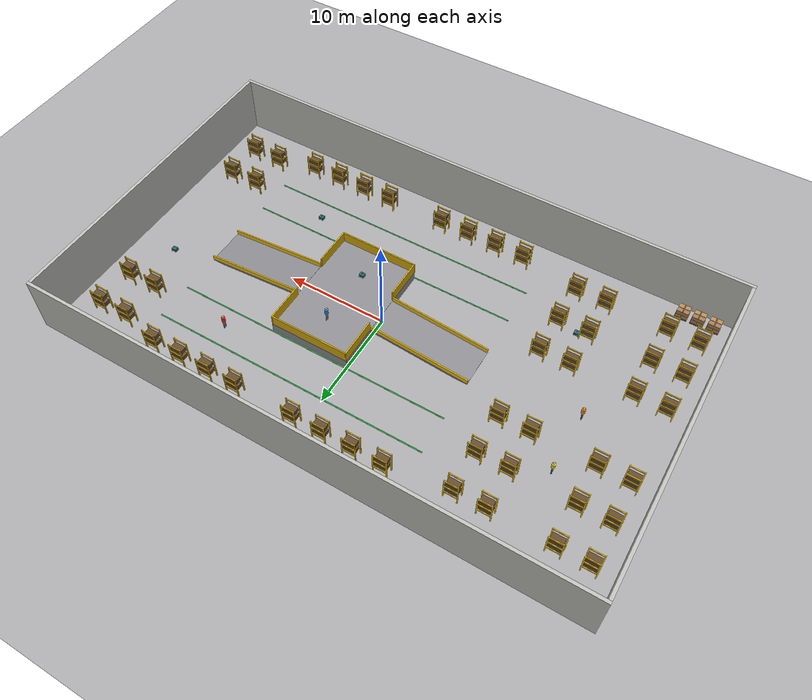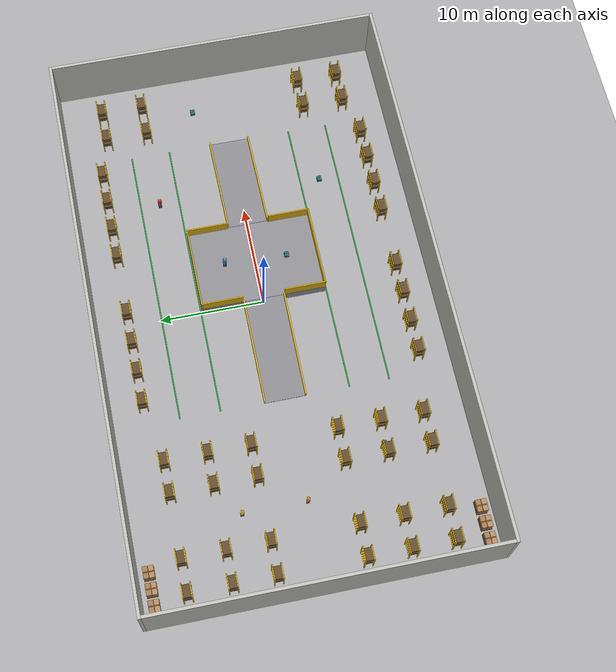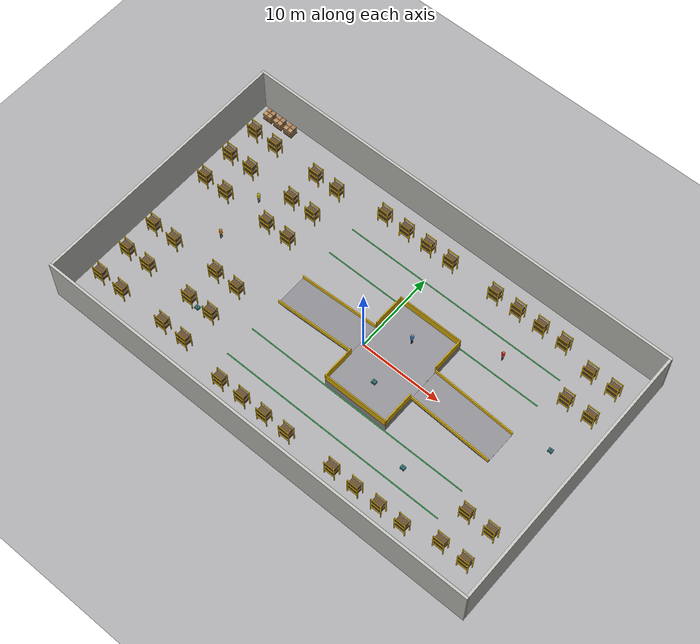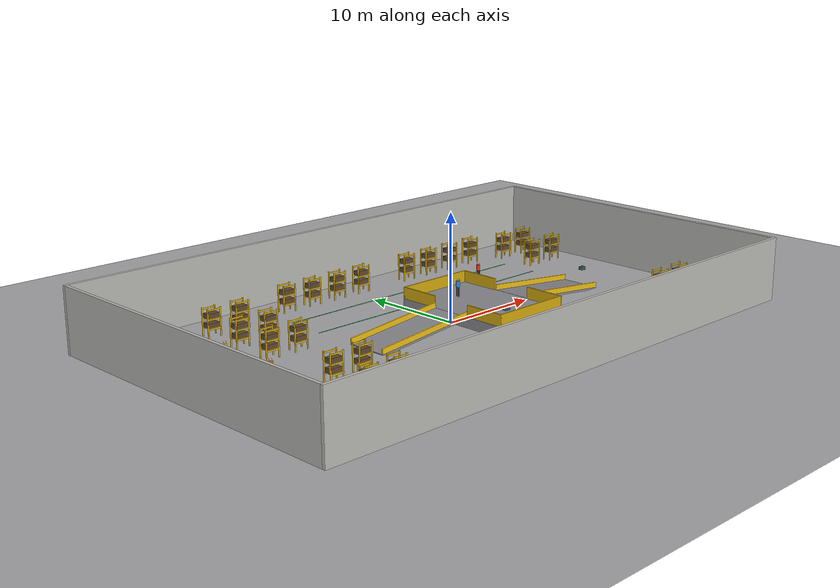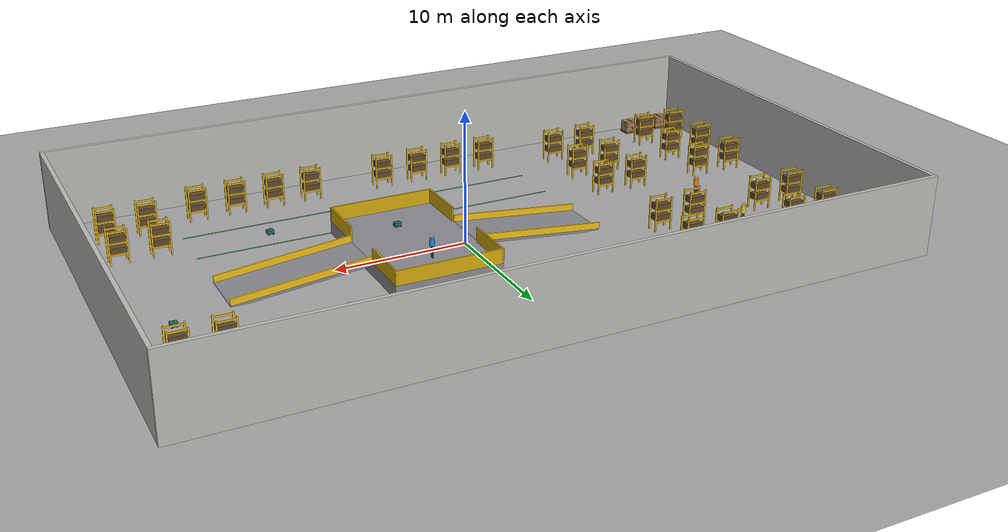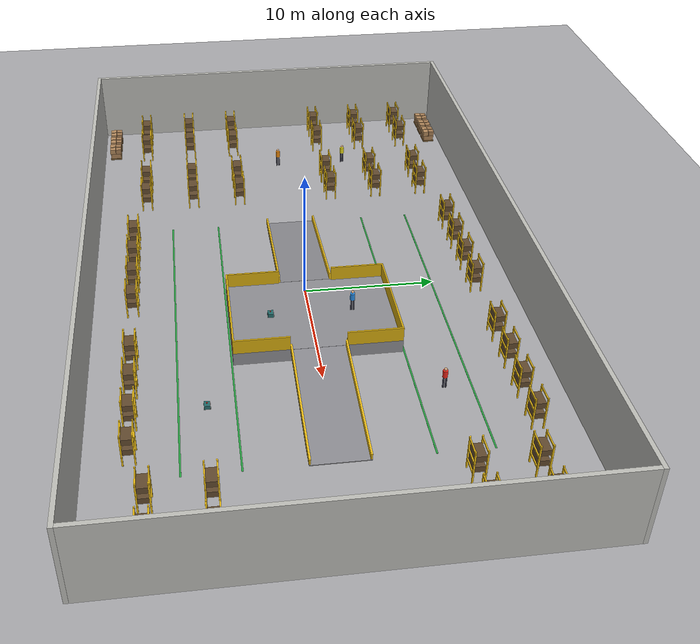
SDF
<?xml version="1.0" ?>
<sdf version="1.9">
  <world name="warehouse">

    <gui fullscreen="false">
      <camera name="user_camera">
        <camera_pose>-4 -26 14 0 0.5 1.5708</camera_pose>
      </camera>
    </gui>

    <physics name="1ms" type="ignored">
      <max_step_size>0.001</max_step_size>
      <real_time_factor>1.0</real_time_factor>
    </physics>

    <plugin filename="ignition-gazebo-physics-system" name="ignition::gazebo::systems::Physics"/>
    <plugin filename="ignition-gazebo-user-commands-system" name="ignition::gazebo::systems::UserCommands"/>
    <plugin filename="ignition-gazebo-scene-broadcaster-system" name="ignition::gazebo::systems::SceneBroadcaster"/>
    <plugin filename="ignition-gazebo-sensors-system" name="ignition::gazebo::systems::Sensors">
      <render_engine>ogre2</render_engine>
    </plugin>
    <plugin filename="ignition-gazebo-imu-system" name="ignition::gazebo::systems::Imu"/>
    <plugin filename="ignition-gazebo-contact-system" name="ignition::gazebo::systems::Contact"/>

    <scene>
      <ambient>0.6 0.6 0.6 1</ambient>
      <background>0.75 0.78 0.82 1</background>
      <shadows>true</shadows>
    </scene>

    <light type="directional" name="sun">
      <cast_shadows>true</cast_shadows>
      <pose>0 0 25 0 0 0</pose>
      <diffuse>0.9 0.9 0.9 1</diffuse>
      <specular>0.25 0.25 0.25 1</specular>
      <attenuation><range>900</range><constant>0.9</constant><linear>0.01</linear><quadratic>0.001</quadratic></attenuation>
      <direction>-0.3 0.35 -0.9</direction>
    </light>

    <model name="ground_plane">
      <static>true</static>
      <link name="link">
        <collision name="collision">
          <geometry><plane><normal>0 0 1</normal><size>54.0 32.0</size></plane></geometry>
          <surface><friction><ode><mu>0.9</mu><mu2>0.9</mu2></ode></friction></surface>
        </collision>
        <visual name="visual">
          <geometry><plane><normal>0 0 1</normal><size>54.0 32.0</size></plane></geometry>
          <material><ambient>0.62 0.62 0.63 1</ambient><diffuse>0.66 0.66 0.67 1</diffuse></material>
        </visual>
      </link>
    </model>
    <model name="wall_north">
      <static>true</static>
      <pose>-1.0 16.15 3.0 0 0 0.0</pose>
      <link name="link">
        <collision name="collision"><geometry><box><size>54.6 0.3 6.0</size></box></geometry>
          <surface><friction><ode><mu>1.0</mu><mu2>1.0</mu2></ode></friction></surface></collision>
        <visual name="visual"><geometry><box><size>54.6 0.3 6.0</size></box></geometry>
          <material><ambient>0.74 0.74 0.72 1</ambient><diffuse>0.74 0.74 0.72 1</diffuse></material>
        </visual>
      </link>
    </model>
    <model name="wall_south">
      <static>true</static>
      <pose>-1.0 -16.15 3.0 0 0 0.0</pose>
      <link name="link">
        <collision name="collision"><geometry><box><size>54.6 0.3 6.0</size></box></geometry>
          <surface><friction><ode><mu>1.0</mu><mu2>1.0</mu2></ode></friction></surface></collision>
        <visual name="visual"><geometry><box><size>54.6 0.3 6.0</size></box></geometry>
          <material><ambient>0.74 0.74 0.72 1</ambient><diffuse>0.74 0.74 0.72 1</diffuse></material>
        </visual>
      </link>
    </model>
    <model name="wall_east">
      <static>true</static>
      <pose>26.15 0 3.0 0 0 0.0</pose>
      <link name="link">
        <collision name="collision"><geometry><box><size>0.3 32.0 6.0</size></box></geometry>
          <surface><friction><ode><mu>1.0</mu><mu2>1.0</mu2></ode></friction></surface></collision>
        <visual name="visual"><geometry><box><size>0.3 32.0 6.0</size></box></geometry>
          <material><ambient>0.74 0.74 0.72 1</ambient><diffuse>0.74 0.74 0.72 1</diffuse></material>
        </visual>
      </link>
    </model>
    <model name="wall_west">
      <static>true</static>
      <pose>-28.15 0 3.0 0 0 0.0</pose>
      <link name="link">
        <collision name="collision"><geometry><box><size>0.3 32.0 6.0</size></box></geometry>
          <surface><friction><ode><mu>1.0</mu><mu2>1.0</mu2></ode></friction></surface></collision>
        <visual name="visual"><geometry><box><size>0.3 32.0 6.0</size></box></geometry>
          <material><ambient>0.74 0.74 0.72 1</ambient><diffuse>0.74 0.74 0.72 1</diffuse></material>
        </visual>
      </link>
    </model>
    <model name="mezzanine">
      <static>true</static>
      <pose>4.0 0.0 0.5 0 0 0.0</pose>
      <link name="link">
        <collision name="collision"><geometry><box><size>8.0 12.0 1.0</size></box></geometry>
          <surface><friction><ode><mu>1.0</mu><mu2>1.0</mu2></ode></friction></surface></collision>
        <visual name="visual"><geometry><box><size>8.0 12.0 1.0</size></box></geometry>
          <material><ambient>0.55 0.55 0.57 1</ambient><diffuse>0.55 0.55 0.57 1</diffuse></material>
        </visual>
      </link>
    </model>
    <model name="ramp_up">
      <static>true</static>
      <pose>-5.0 0 0.4005 0 -0.09966865 0</pose>
      <link name="link">
        <collision name="collision"><geometry><box><size>10.050 4.0 0.2</size></box></geometry>
          <surface><friction><ode><mu>1.0</mu><mu2>1.0</mu2></ode></friction></surface></collision>
        <visual name="visual"><geometry><box><size>10.050 4.0 0.2</size></box></geometry>
          <material><ambient>0.5 0.5 0.52 1</ambient><diffuse>0.54 0.54 0.56 1</diffuse></material></visual>
      </link>
    </model>
    <model name="ramp_up_kerb_n">
      <static>true</static>
      <pose>-5.0 1.94 0.7488 0 -0.09966865 0</pose>
      <link name="link">
        <collision name="collision"><geometry><box><size>10.050 0.12 0.5</size></box></geometry></collision>
        <visual name="visual"><geometry><box><size>10.050 0.12 0.5</size></box></geometry>
          <material><ambient>0.85 0.68 0.05 1</ambient><diffuse>0.95 0.76 0.08 1</diffuse></material>
        </visual>
      </link>
    </model>
    <model name="ramp_up_kerb_s">
      <static>true</static>
      <pose>-5.0 -1.94 0.7488 0 -0.09966865 0</pose>
      <link name="link">
        <collision name="collision"><geometry><box><size>10.050 0.12 0.5</size></box></geometry></collision>
        <visual name="visual"><geometry><box><size>10.050 0.12 0.5</size></box></geometry>
          <material><ambient>0.85 0.68 0.05 1</ambient><diffuse>0.95 0.76 0.08 1</diffuse></material>
        </visual>
      </link>
    </model>
    <model name="ramp_down">
      <static>true</static>
      <pose>13.0 0 0.4005 0 0.09966865 0</pose>
      <link name="link">
        <collision name="collision"><geometry><box><size>10.050 4.0 0.2</size></box></geometry>
          <surface><friction><ode><mu>1.0</mu><mu2>1.0</mu2></ode></friction></surface></collision>
        <visual name="visual"><geometry><box><size>10.050 4.0 0.2</size></box></geometry>
          <material><ambient>0.5 0.5 0.52 1</ambient><diffuse>0.54 0.54 0.56 1</diffuse></material></visual>
      </link>
    </model>
    <model name="ramp_down_kerb_n">
      <static>true</static>
      <pose>13.0 1.94 0.7488 0 0.09966865 0</pose>
      <link name="link">
        <collision name="collision"><geometry><box><size>10.050 0.12 0.5</size></box></geometry></collision>
        <visual name="visual"><geometry><box><size>10.050 0.12 0.5</size></box></geometry>
          <material><ambient>0.85 0.68 0.05 1</ambient><diffuse>0.95 0.76 0.08 1</diffuse></material>
        </visual>
      </link>
    </model>
    <model name="ramp_down_kerb_s">
      <static>true</static>
      <pose>13.0 -1.94 0.7488 0 0.09966865 0</pose>
      <link name="link">
        <collision name="collision"><geometry><box><size>10.050 0.12 0.5</size></box></geometry></collision>
        <visual name="visual"><geometry><box><size>10.050 0.12 0.5</size></box></geometry>
          <material><ambient>0.85 0.68 0.05 1</ambient><diffuse>0.95 0.76 0.08 1</diffuse></material>
        </visual>
      </link>
    </model>
    <model name="mezz_rail_n">
      <static>true</static>
      <pose>4.0 5.94 1.55 0 0 0.0</pose>
      <link name="link">
        <collision name="collision"><geometry><box><size>8.0 0.12 1.1</size></box></geometry>
          <surface><friction><ode><mu>1.0</mu><mu2>1.0</mu2></ode></friction></surface></collision>
        <visual name="visual"><geometry><box><size>8.0 0.12 1.1</size></box></geometry>
          <material><ambient>0.85 0.68 0.05 1</ambient><diffuse>0.85 0.68 0.05 1</diffuse></material>
        </visual>
      </link>
    </model>
    <model name="mezz_rail_s">
      <static>true</static>
      <pose>4.0 -5.94 1.55 0 0 0.0</pose>
      <link name="link">
        <collision name="collision"><geometry><box><size>8.0 0.12 1.1</size></box></geometry>
          <surface><friction><ode><mu>1.0</mu><mu2>1.0</mu2></ode></friction></surface></collision>
        <visual name="visual"><geometry><box><size>8.0 0.12 1.1</size></box></geometry>
          <material><ambient>0.85 0.68 0.05 1</ambient><diffuse>0.85 0.68 0.05 1</diffuse></material>
        </visual>
      </link>
    </model>
    <model name="mezz_rail_wn">
      <static>true</static>
      <pose>0.06 4.0 1.55 0 0 0.0</pose>
      <link name="link">
        <collision name="collision"><geometry><box><size>0.12 4.0 1.1</size></box></geometry>
          <surface><friction><ode><mu>1.0</mu><mu2>1.0</mu2></ode></friction></surface></collision>
        <visual name="visual"><geometry><box><size>0.12 4.0 1.1</size></box></geometry>
          <material><ambient>0.85 0.68 0.05 1</ambient><diffuse>0.85 0.68 0.05 1</diffuse></material>
        </visual>
      </link>
    </model>
    <model name="mezz_rail_ws">
      <static>true</static>
      <pose>0.06 -4.0 1.55 0 0 0.0</pose>
      <link name="link">
        <collision name="collision"><geometry><box><size>0.12 4.0 1.1</size></box></geometry>
          <surface><friction><ode><mu>1.0</mu><mu2>1.0</mu2></ode></friction></surface></collision>
        <visual name="visual"><geometry><box><size>0.12 4.0 1.1</size></box></geometry>
          <material><ambient>0.85 0.68 0.05 1</ambient><diffuse>0.85 0.68 0.05 1</diffuse></material>
        </visual>
      </link>
    </model>
    <model name="mezz_rail_en">
      <static>true</static>
      <pose>7.94 4.0 1.55 0 0 0.0</pose>
      <link name="link">
        <collision name="collision"><geometry><box><size>0.12 4.0 1.1</size></box></geometry>
          <surface><friction><ode><mu>1.0</mu><mu2>1.0</mu2></ode></friction></surface></collision>
        <visual name="visual"><geometry><box><size>0.12 4.0 1.1</size></box></geometry>
          <material><ambient>0.85 0.68 0.05 1</ambient><diffuse>0.85 0.68 0.05 1</diffuse></material>
        </visual>
      </link>
    </model>
    <model name="mezz_rail_es">
      <static>true</static>
      <pose>7.94 -4.0 1.55 0 0 0.0</pose>
      <link name="link">
        <collision name="collision"><geometry><box><size>0.12 4.0 1.1</size></box></geometry>
          <surface><friction><ode><mu>1.0</mu><mu2>1.0</mu2></ode></friction></surface></collision>
        <visual name="visual"><geometry><box><size>0.12 4.0 1.1</size></box></geometry>
          <material><ambient>0.85 0.68 0.05 1</ambient><diffuse>0.85 0.68 0.05 1</diffuse></material>
        </visual>
      </link>
    </model>
    <include><name>rack_wm12_0</name><uri>model://pallet_rack</uri><pose>-26.0 -12.0 0 0 0 0</pose></include>
    <include><name>rack_wm12_1</name><uri>model://pallet_rack</uri><pose>-23.0 -12.0 0 0 0 0</pose></include>
    <include><name>rack_wm12_2</name><uri>model://pallet_rack</uri><pose>-17.0 -12.0 0 0 0 0</pose></include>
    <include><name>rack_wm12_3</name><uri>model://pallet_rack</uri><pose>-14.0 -12.0 0 0 0 0</pose></include>
    <include><name>rack_wm8_0</name><uri>model://pallet_rack</uri><pose>-26.0 -8.0 0 0 0 0</pose></include>
    <include><name>rack_wm8_1</name><uri>model://pallet_rack</uri><pose>-23.0 -8.0 0 0 0 0</pose></include>
    <include><name>rack_wm8_2</name><uri>model://pallet_rack</uri><pose>-17.0 -8.0 0 0 0 0</pose></include>
    <include><name>rack_wm8_3</name><uri>model://pallet_rack</uri><pose>-14.0 -8.0 0 0 0 0</pose></include>
    <include><name>rack_wm4_0</name><uri>model://pallet_rack</uri><pose>-26.0 -4.0 0 0 0 0</pose></include>
    <include><name>rack_wm4_1</name><uri>model://pallet_rack</uri><pose>-23.0 -4.0 0 0 0 0</pose></include>
    <include><name>rack_wm4_2</name><uri>model://pallet_rack</uri><pose>-17.0 -4.0 0 0 0 0</pose></include>
    <include><name>rack_wm4_3</name><uri>model://pallet_rack</uri><pose>-14.0 -4.0 0 0 0 0</pose></include>
    <include><name>rack_w4_0</name><uri>model://pallet_rack</uri><pose>-26.0 4.0 0 0 0 0</pose></include>
    <include><name>rack_w4_1</name><uri>model://pallet_rack</uri><pose>-23.0 4.0 0 0 0 0</pose></include>
    <include><name>rack_w4_2</name><uri>model://pallet_rack</uri><pose>-17.0 4.0 0 0 0 0</pose></include>
    <include><name>rack_w4_3</name><uri>model://pallet_rack</uri><pose>-14.0 4.0 0 0 0 0</pose></include>
    <include><name>rack_w8_0</name><uri>model://pallet_rack</uri><pose>-26.0 8.0 0 0 0 0</pose></include>
    <include><name>rack_w8_1</name><uri>model://pallet_rack</uri><pose>-23.0 8.0 0 0 0 0</pose></include>
    <include><name>rack_w8_2</name><uri>model://pallet_rack</uri><pose>-17.0 8.0 0 0 0 0</pose></include>
    <include><name>rack_w8_3</name><uri>model://pallet_rack</uri><pose>-14.0 8.0 0 0 0 0</pose></include>
    <include><name>rack_w12_0</name><uri>model://pallet_rack</uri><pose>-26.0 12.0 0 0 0 0</pose></include>
    <include><name>rack_w12_1</name><uri>model://pallet_rack</uri><pose>-23.0 12.0 0 0 0 0</pose></include>
    <include><name>rack_w12_2</name><uri>model://pallet_rack</uri><pose>-17.0 12.0 0 0 0 0</pose></include>
    <include><name>rack_w12_3</name><uri>model://pallet_rack</uri><pose>-14.0 12.0 0 0 0 0</pose></include>
    <include><name>rack_m13_0</name><uri>model://pallet_rack</uri><pose>-8.0 13.0 0 0 0 0</pose></include>
    <include><name>rack_m13_1</name><uri>model://pallet_rack</uri><pose>-5.0 13.0 0 0 0 0</pose></include>
    <include><name>rack_m13_2</name><uri>model://pallet_rack</uri><pose>-2.0 13.0 0 0 0 0</pose></include>
    <include><name>rack_m13_3</name><uri>model://pallet_rack</uri><pose>1.0 13.0 0 0 0 0</pose></include>
    <include><name>rack_m13_4</name><uri>model://pallet_rack</uri><pose>7.0 13.0 0 0 0 0</pose></include>
    <include><name>rack_m13_5</name><uri>model://pallet_rack</uri><pose>10.0 13.0 0 0 0 0</pose></include>
    <include><name>rack_m13_6</name><uri>model://pallet_rack</uri><pose>13.0 13.0 0 0 0 0</pose></include>
    <include><name>rack_m13_7</name><uri>model://pallet_rack</uri><pose>16.0 13.0 0 0 0 0</pose></include>
    <include><name>rack_mm13_0</name><uri>model://pallet_rack</uri><pose>-8.0 -13.0 0 0 0 0</pose></include>
    <include><name>rack_mm13_1</name><uri>model://pallet_rack</uri><pose>-5.0 -13.0 0 0 0 0</pose></include>
    <include><name>rack_mm13_2</name><uri>model://pallet_rack</uri><pose>-2.0 -13.0 0 0 0 0</pose></include>
    <include><name>rack_mm13_3</name><uri>model://pallet_rack</uri><pose>1.0 -13.0 0 0 0 0</pose></include>
    <include><name>rack_mm13_4</name><uri>model://pallet_rack</uri><pose>7.0 -13.0 0 0 0 0</pose></include>
    <include><name>rack_mm13_5</name><uri>model://pallet_rack</uri><pose>10.0 -13.0 0 0 0 0</pose></include>
    <include><name>rack_mm13_6</name><uri>model://pallet_rack</uri><pose>13.0 -13.0 0 0 0 0</pose></include>
    <include><name>rack_mm13_7</name><uri>model://pallet_rack</uri><pose>16.0 -13.0 0 0 0 0</pose></include>
    <include><name>rack_em12_0</name><uri>model://pallet_rack</uri><pose>20.0 -12.0 0 0 0 0</pose></include>
    <include><name>rack_em12_1</name><uri>model://pallet_rack</uri><pose>23.0 -12.0 0 0 0 0</pose></include>
    <include><name>rack_em8_0</name><uri>model://pallet_rack</uri><pose>20.0 -8.0 0 0 0 0</pose></include>
    <include><name>rack_em8_1</name><uri>model://pallet_rack</uri><pose>23.0 -8.0 0 0 0 0</pose></include>
    <include><name>rack_e8_0</name><uri>model://pallet_rack</uri><pose>20.0 8.0 0 0 0 0</pose></include>
    <include><name>rack_e8_1</name><uri>model://pallet_rack</uri><pose>23.0 8.0 0 0 0 0</pose></include>
    <include><name>rack_e12_0</name><uri>model://pallet_rack</uri><pose>20.0 12.0 0 0 0 0</pose></include>
    <include><name>rack_e12_1</name><uri>model://pallet_rack</uri><pose>23.0 12.0 0 0 0 0</pose></include>
    <include><name>stack_0_0</name><uri>model://pallet_stack</uri><pose>-26.5 -15.0 0 0 0 0</pose></include>
    <include><name>stack_0_1</name><uri>model://pallet_stack</uri><pose>-26.5 15.0 0 0 0 0</pose></include>
    <include><name>stack_1_0</name><uri>model://pallet_stack</uri><pose>-25.0 -15.0 0 0 0 0</pose></include>
    <include><name>stack_1_1</name><uri>model://pallet_stack</uri><pose>-25.0 15.0 0 0 0 0</pose></include>
    <include><name>stack_2_0</name><uri>model://pallet_stack</uri><pose>-23.5 -15.0 0 0 0 0</pose></include>
    <include><name>stack_2_1</name><uri>model://pallet_stack</uri><pose>-23.5 15.0 0 0 0 0</pose></include>
    <model name="bypass_n_a">
      <static>true</static>
      <pose>4.0 9.9 0.005 0 0 0</pose>
      <link name="link">
        <visual name="visual"><geometry><box><size>28.0 0.12 0.01</size></box></geometry>
          <material><ambient>0.15 0.62 0.25 1</ambient><diffuse>0.15 0.62 0.25 1</diffuse></material>
        </visual>
      </link>
    </model>
    <model name="bypass_n_b">
      <static>true</static>
      <pose>4.0 6.1 0.005 0 0 0</pose>
      <link name="link">
        <visual name="visual"><geometry><box><size>28.0 0.12 0.01</size></box></geometry>
          <material><ambient>0.15 0.62 0.25 1</ambient><diffuse>0.15 0.62 0.25 1</diffuse></material>
        </visual>
      </link>
    </model>
    <model name="bypass_s_a">
      <static>true</static>
      <pose>4.0 -6.1 0.005 0 0 0</pose>
      <link name="link">
        <visual name="visual"><geometry><box><size>28.0 0.12 0.01</size></box></geometry>
          <material><ambient>0.15 0.62 0.25 1</ambient><diffuse>0.15 0.62 0.25 1</diffuse></material>
        </visual>
      </link>
    </model>
    <model name="bypass_s_b">
      <static>true</static>
      <pose>4.0 -9.9 0.005 0 0 0</pose>
      <link name="link">
        <visual name="visual"><geometry><box><size>28.0 0.12 0.01</size></box></geometry>
          <material><ambient>0.15 0.62 0.25 1</ambient><diffuse>0.15 0.62 0.25 1</diffuse></material>
        </visual>
      </link>
    </model>
    <model name="ped_1">
      <!-- west central corridor, on the Ramp Up run-up -->
      <pose>-20.0 0.0 0.85 0 0 0.0</pose>
      <link name="link">
        <inertial><pose>0 0 -0.65 0 0 0</pose><mass>12</mass><inertia><ixx>0.43</ixx><iyy>0.43</iyy><izz>0.54</izz><ixy>0</ixy><ixz>0</ixz><iyz>0</iyz></inertia></inertial>
        <collision name="collision"><pose>0 0 -0.65 0 0 0</pose><geometry><cylinder><radius>0.3</radius><length>0.4</length></cylinder></geometry><surface><contact><ode><max_vel>1.0</max_vel><min_depth>0.001</min_depth></ode></contact><bounce><restitution_coefficient>0.0</restitution_coefficient></bounce><friction><ode><mu>0.6</mu><mu2>0.6</mu2></ode></friction></surface></collision>
        <visual name="legs"><pose>0 0.09 -0.4 0 0 0</pose><geometry><cylinder><radius>0.07</radius><length>0.9</length></cylinder></geometry>
          <material><ambient>0.15 0.15 0.2 1</ambient><diffuse>0.15 0.15 0.2 1</diffuse></material></visual>
        <visual name="legs_2"><pose>0 -0.09 -0.4 0 0 0</pose><geometry><cylinder><radius>0.07</radius><length>0.9</length></cylinder></geometry>
          <material><ambient>0.15 0.15 0.2 1</ambient><diffuse>0.15 0.15 0.2 1</diffuse></material></visual>
        <visual name="torso"><pose>0 0 0.335 0 0 0</pose><geometry><cylinder><radius>0.18</radius><length>0.55</length></cylinder></geometry>
          <material><ambient>0.95 0.55 0.05 1</ambient><diffuse>0.95 0.55 0.05 1</diffuse></material></visual>
        <visual name="head"><pose>0 0 0.73 0 0 0</pose><geometry><sphere><radius>0.11</radius></sphere></geometry>
          <material><ambient>0.82 0.65 0.5 1</ambient><diffuse>0.82 0.65 0.5 1</diffuse></material></visual>
      </link>
      <plugin filename="ignition-gazebo-velocity-control-system" name="ignition::gazebo::systems::VelocityControl">
        <topic>/model/ped_1/cmd_vel</topic>
      </plugin>
    </model>
    <model name="ped_2">
      <!-- west cross aisle -->
      <pose>-20.0 6.0 0.85 0 0 0.0</pose>
      <link name="link">
        <inertial><pose>0 0 -0.65 0 0 0</pose><mass>12</mass><inertia><ixx>0.43</ixx><iyy>0.43</iyy><izz>0.54</izz><ixy>0</ixy><ixz>0</ixz><iyz>0</iyz></inertia></inertial>
        <collision name="collision"><pose>0 0 -0.65 0 0 0</pose><geometry><cylinder><radius>0.3</radius><length>0.4</length></cylinder></geometry><surface><contact><ode><max_vel>1.0</max_vel><min_depth>0.001</min_depth></ode></contact><bounce><restitution_coefficient>0.0</restitution_coefficient></bounce><friction><ode><mu>0.6</mu><mu2>0.6</mu2></ode></friction></surface></collision>
        <visual name="legs"><pose>0 0.09 -0.4 0 0 0</pose><geometry><cylinder><radius>0.07</radius><length>0.9</length></cylinder></geometry>
          <material><ambient>0.15 0.15 0.2 1</ambient><diffuse>0.15 0.15 0.2 1</diffuse></material></visual>
        <visual name="legs_2"><pose>0 -0.09 -0.4 0 0 0</pose><geometry><cylinder><radius>0.07</radius><length>0.9</length></cylinder></geometry>
          <material><ambient>0.15 0.15 0.2 1</ambient><diffuse>0.15 0.15 0.2 1</diffuse></material></visual>
        <visual name="torso"><pose>0 0 0.335 0 0 0</pose><geometry><cylinder><radius>0.18</radius><length>0.55</length></cylinder></geometry>
          <material><ambient>0.9 0.85 0.1 1</ambient><diffuse>0.9 0.85 0.1 1</diffuse></material></visual>
        <visual name="head"><pose>0 0 0.73 0 0 0</pose><geometry><sphere><radius>0.11</radius></sphere></geometry>
          <material><ambient>0.82 0.65 0.5 1</ambient><diffuse>0.82 0.65 0.5 1</diffuse></material></visual>
      </link>
      <plugin filename="ignition-gazebo-velocity-control-system" name="ignition::gazebo::systems::VelocityControl">
        <topic>/model/ped_2/cmd_vel</topic>
      </plugin>
    </model>
    <model name="ped_3">
      <!-- north bypass aisle: contests the flat route -->
      <pose>12.0 8.0 0.85 0 0 0.0</pose>
      <link name="link">
        <inertial><pose>0 0 -0.65 0 0 0</pose><mass>12</mass><inertia><ixx>0.43</ixx><iyy>0.43</iyy><izz>0.54</izz><ixy>0</ixy><ixz>0</ixz><iyz>0</iyz></inertia></inertial>
        <collision name="collision"><pose>0 0 -0.65 0 0 0</pose><geometry><cylinder><radius>0.3</radius><length>0.4</length></cylinder></geometry><surface><contact><ode><max_vel>1.0</max_vel><min_depth>0.001</min_depth></ode></contact><bounce><restitution_coefficient>0.0</restitution_coefficient></bounce><friction><ode><mu>0.6</mu><mu2>0.6</mu2></ode></friction></surface></collision>
        <visual name="legs"><pose>0 0.09 -0.4 0 0 0</pose><geometry><cylinder><radius>0.07</radius><length>0.9</length></cylinder></geometry>
          <material><ambient>0.15 0.15 0.2 1</ambient><diffuse>0.15 0.15 0.2 1</diffuse></material></visual>
        <visual name="legs_2"><pose>0 -0.09 -0.4 0 0 0</pose><geometry><cylinder><radius>0.07</radius><length>0.9</length></cylinder></geometry>
          <material><ambient>0.15 0.15 0.2 1</ambient><diffuse>0.15 0.15 0.2 1</diffuse></material></visual>
        <visual name="torso"><pose>0 0 0.335 0 0 0</pose><geometry><cylinder><radius>0.18</radius><length>0.55</length></cylinder></geometry>
          <material><ambient>0.95 0.15 0.1 1</ambient><diffuse>0.95 0.15 0.1 1</diffuse></material></visual>
        <visual name="head"><pose>0 0 0.73 0 0 0</pose><geometry><sphere><radius>0.11</radius></sphere></geometry>
          <material><ambient>0.82 0.65 0.5 1</ambient><diffuse>0.82 0.65 0.5 1</diffuse></material></visual>
      </link>
      <plugin filename="ignition-gazebo-velocity-control-system" name="ignition::gazebo::systems::VelocityControl">
        <topic>/model/ped_3/cmd_vel</topic>
      </plugin>
    </model>
    <model name="ped_4">
      <!-- up on the mezzanine -->
      <pose>4.0 3.0 1.85 0 0 0.0</pose>
      <link name="link">
        <inertial><pose>0 0 -0.65 0 0 0</pose><mass>12</mass><inertia><ixx>0.43</ixx><iyy>0.43</iyy><izz>0.54</izz><ixy>0</ixy><ixz>0</ixz><iyz>0</iyz></inertia></inertial>
        <collision name="collision"><pose>0 0 -0.65 0 0 0</pose><geometry><cylinder><radius>0.3</radius><length>0.4</length></cylinder></geometry><surface><contact><ode><max_vel>1.0</max_vel><min_depth>0.001</min_depth></ode></contact><bounce><restitution_coefficient>0.0</restitution_coefficient></bounce><friction><ode><mu>0.6</mu><mu2>0.6</mu2></ode></friction></surface></collision>
        <visual name="legs"><pose>0 0.09 -0.4 0 0 0</pose><geometry><cylinder><radius>0.07</radius><length>0.9</length></cylinder></geometry>
          <material><ambient>0.15 0.15 0.2 1</ambient><diffuse>0.15 0.15 0.2 1</diffuse></material></visual>
        <visual name="legs_2"><pose>0 -0.09 -0.4 0 0 0</pose><geometry><cylinder><radius>0.07</radius><length>0.9</length></cylinder></geometry>
          <material><ambient>0.15 0.15 0.2 1</ambient><diffuse>0.15 0.15 0.2 1</diffuse></material></visual>
        <visual name="torso"><pose>0 0 0.335 0 0 0</pose><geometry><cylinder><radius>0.18</radius><length>0.55</length></cylinder></geometry>
          <material><ambient>0.15 0.55 0.9 1</ambient><diffuse>0.15 0.55 0.9 1</diffuse></material></visual>
        <visual name="head"><pose>0 0 0.73 0 0 0</pose><geometry><sphere><radius>0.11</radius></sphere></geometry>
          <material><ambient>0.82 0.65 0.5 1</ambient><diffuse>0.82 0.65 0.5 1</diffuse></material></visual>
      </link>
      <plugin filename="ignition-gazebo-velocity-control-system" name="ignition::gazebo::systems::VelocityControl">
        <topic>/model/ped_4/cmd_vel</topic>
      </plugin>
    </model>
    <model name="robot_1">
      <!-- west block aisle -->
      <pose>-16.0 -8.0 0.15 0 0 0</pose>
      <link name="link">
        <inertial><mass>18</mass><inertia><ixx>0.35</ixx><iyy>0.35</iyy><izz>0.35</izz><ixy>0</ixy><ixz>0</ixz><iyz>0</iyz></inertia></inertial>
        <collision name="collision"><geometry><box><size>0.5 0.4 0.3</size></box></geometry><surface><contact><ode><max_vel>1.0</max_vel><min_depth>0.001</min_depth></ode></contact><bounce><restitution_coefficient>0.0</restitution_coefficient></bounce><friction><ode><mu>0.6</mu><mu2>0.6</mu2></ode></friction></surface></collision>
        <visual name="chassis"><geometry><box><size>0.5 0.4 0.3</size></box></geometry>
          <material><ambient>0.14 0.42 0.42 1</ambient><diffuse>0.14 0.42 0.42 1</diffuse></material></visual>
        <visual name="wheel_fl"><pose>0.17 0.21 -0.09 1.5708 0 0</pose><geometry><cylinder><radius>0.09</radius><length>0.05</length></cylinder></geometry>
          <material><ambient>0.05 0.05 0.05 1</ambient><diffuse>0.05 0.05 0.05 1</diffuse></material></visual>
        <visual name="wheel_fr"><pose>0.17 -0.21 -0.09 1.5708 0 0</pose><geometry><cylinder><radius>0.09</radius><length>0.05</length></cylinder></geometry>
          <material><ambient>0.05 0.05 0.05 1</ambient><diffuse>0.05 0.05 0.05 1</diffuse></material></visual>
        <visual name="wheel_rl"><pose>-0.17 0.21 -0.09 1.5708 0 0</pose><geometry><cylinder><radius>0.09</radius><length>0.05</length></cylinder></geometry>
          <material><ambient>0.05 0.05 0.05 1</ambient><diffuse>0.05 0.05 0.05 1</diffuse></material></visual>
        <visual name="wheel_rr"><pose>-0.17 -0.21 -0.09 1.5708 0 0</pose><geometry><cylinder><radius>0.09</radius><length>0.05</length></cylinder></geometry>
          <material><ambient>0.05 0.05 0.05 1</ambient><diffuse>0.05 0.05 0.05 1</diffuse></material></visual>
        <visual name="beacon"><pose>0 0 0.22 0 0 0</pose><geometry><sphere><radius>0.05</radius></sphere></geometry>
          <material><ambient>1.0 0.15 0.1 1</ambient><diffuse>1.0 0.15 0.1 1</diffuse></material></visual>
      </link>
      <plugin filename="ignition-gazebo-velocity-control-system" name="ignition::gazebo::systems::VelocityControl">
        <topic>/model/robot_1/cmd_vel</topic>
      </plugin>
    </model>
    <model name="robot_2">
      <!-- south bypass aisle: contests the flat route -->
      <pose>12.0 -8.0 0.15 0 0 0</pose>
      <link name="link">
        <inertial><mass>18</mass><inertia><ixx>0.35</ixx><iyy>0.35</iyy><izz>0.35</izz><ixy>0</ixy><ixz>0</ixz><iyz>0</iyz></inertia></inertial>
        <collision name="collision"><geometry><box><size>0.5 0.4 0.3</size></box></geometry><surface><contact><ode><max_vel>1.0</max_vel><min_depth>0.001</min_depth></ode></contact><bounce><restitution_coefficient>0.0</restitution_coefficient></bounce><friction><ode><mu>0.6</mu><mu2>0.6</mu2></ode></friction></surface></collision>
        <visual name="chassis"><geometry><box><size>0.5 0.4 0.3</size></box></geometry>
          <material><ambient>0.14 0.42 0.42 1</ambient><diffuse>0.14 0.42 0.42 1</diffuse></material></visual>
        <visual name="wheel_fl"><pose>0.17 0.21 -0.09 1.5708 0 0</pose><geometry><cylinder><radius>0.09</radius><length>0.05</length></cylinder></geometry>
          <material><ambient>0.05 0.05 0.05 1</ambient><diffuse>0.05 0.05 0.05 1</diffuse></material></visual>
        <visual name="wheel_fr"><pose>0.17 -0.21 -0.09 1.5708 0 0</pose><geometry><cylinder><radius>0.09</radius><length>0.05</length></cylinder></geometry>
          <material><ambient>0.05 0.05 0.05 1</ambient><diffuse>0.05 0.05 0.05 1</diffuse></material></visual>
        <visual name="wheel_rl"><pose>-0.17 0.21 -0.09 1.5708 0 0</pose><geometry><cylinder><radius>0.09</radius><length>0.05</length></cylinder></geometry>
          <material><ambient>0.05 0.05 0.05 1</ambient><diffuse>0.05 0.05 0.05 1</diffuse></material></visual>
        <visual name="wheel_rr"><pose>-0.17 -0.21 -0.09 1.5708 0 0</pose><geometry><cylinder><radius>0.09</radius><length>0.05</length></cylinder></geometry>
          <material><ambient>0.05 0.05 0.05 1</ambient><diffuse>0.05 0.05 0.05 1</diffuse></material></visual>
        <visual name="beacon"><pose>0 0 0.22 0 0 0</pose><geometry><sphere><radius>0.05</radius></sphere></geometry>
          <material><ambient>1.0 0.15 0.1 1</ambient><diffuse>1.0 0.15 0.1 1</diffuse></material></visual>
      </link>
      <plugin filename="ignition-gazebo-velocity-control-system" name="ignition::gazebo::systems::VelocityControl">
        <topic>/model/robot_2/cmd_vel</topic>
      </plugin>
    </model>
    <model name="robot_3">
      <!-- east block, by the packing bay -->
      <pose>22.0 3.0 0.15 0 0 0</pose>
      <link name="link">
        <inertial><mass>18</mass><inertia><ixx>0.35</ixx><iyy>0.35</iyy><izz>0.35</izz><ixy>0</ixy><ixz>0</ixz><iyz>0</iyz></inertia></inertial>
        <collision name="collision"><geometry><box><size>0.5 0.4 0.3</size></box></geometry><surface><contact><ode><max_vel>1.0</max_vel><min_depth>0.001</min_depth></ode></contact><bounce><restitution_coefficient>0.0</restitution_coefficient></bounce><friction><ode><mu>0.6</mu><mu2>0.6</mu2></ode></friction></surface></collision>
        <visual name="chassis"><geometry><box><size>0.5 0.4 0.3</size></box></geometry>
          <material><ambient>0.14 0.42 0.42 1</ambient><diffuse>0.14 0.42 0.42 1</diffuse></material></visual>
        <visual name="wheel_fl"><pose>0.17 0.21 -0.09 1.5708 0 0</pose><geometry><cylinder><radius>0.09</radius><length>0.05</length></cylinder></geometry>
          <material><ambient>0.05 0.05 0.05 1</ambient><diffuse>0.05 0.05 0.05 1</diffuse></material></visual>
        <visual name="wheel_fr"><pose>0.17 -0.21 -0.09 1.5708 0 0</pose><geometry><cylinder><radius>0.09</radius><length>0.05</length></cylinder></geometry>
          <material><ambient>0.05 0.05 0.05 1</ambient><diffuse>0.05 0.05 0.05 1</diffuse></material></visual>
        <visual name="wheel_rl"><pose>-0.17 0.21 -0.09 1.5708 0 0</pose><geometry><cylinder><radius>0.09</radius><length>0.05</length></cylinder></geometry>
          <material><ambient>0.05 0.05 0.05 1</ambient><diffuse>0.05 0.05 0.05 1</diffuse></material></visual>
        <visual name="wheel_rr"><pose>-0.17 -0.21 -0.09 1.5708 0 0</pose><geometry><cylinder><radius>0.09</radius><length>0.05</length></cylinder></geometry>
          <material><ambient>0.05 0.05 0.05 1</ambient><diffuse>0.05 0.05 0.05 1</diffuse></material></visual>
        <visual name="beacon"><pose>0 0 0.22 0 0 0</pose><geometry><sphere><radius>0.05</radius></sphere></geometry>
          <material><ambient>1.0 0.15 0.1 1</ambient><diffuse>1.0 0.15 0.1 1</diffuse></material></visual>
      </link>
      <plugin filename="ignition-gazebo-velocity-control-system" name="ignition::gazebo::systems::VelocityControl">
        <topic>/model/robot_3/cmd_vel</topic>
      </plugin>
    </model>
    <model name="robot_4">
      <!-- up on the mezzanine, south half -->
      <pose>4.0 -3.0 1.15 0 0 0</pose>
      <link name="link">
        <inertial><mass>18</mass><inertia><ixx>0.35</ixx><iyy>0.35</iyy><izz>0.35</izz><ixy>0</ixy><ixz>0</ixz><iyz>0</iyz></inertia></inertial>
        <collision name="collision"><geometry><box><size>0.5 0.4 0.3</size></box></geometry><surface><contact><ode><max_vel>1.0</max_vel><min_depth>0.001</min_depth></ode></contact><bounce><restitution_coefficient>0.0</restitution_coefficient></bounce><friction><ode><mu>0.6</mu><mu2>0.6</mu2></ode></friction></surface></collision>
        <visual name="chassis"><geometry><box><size>0.5 0.4 0.3</size></box></geometry>
          <material><ambient>0.14 0.42 0.42 1</ambient><diffuse>0.14 0.42 0.42 1</diffuse></material></visual>
        <visual name="wheel_fl"><pose>0.17 0.21 -0.09 1.5708 0 0</pose><geometry><cylinder><radius>0.09</radius><length>0.05</length></cylinder></geometry>
          <material><ambient>0.05 0.05 0.05 1</ambient><diffuse>0.05 0.05 0.05 1</diffuse></material></visual>
        <visual name="wheel_fr"><pose>0.17 -0.21 -0.09 1.5708 0 0</pose><geometry><cylinder><radius>0.09</radius><length>0.05</length></cylinder></geometry>
          <material><ambient>0.05 0.05 0.05 1</ambient><diffuse>0.05 0.05 0.05 1</diffuse></material></visual>
        <visual name="wheel_rl"><pose>-0.17 0.21 -0.09 1.5708 0 0</pose><geometry><cylinder><radius>0.09</radius><length>0.05</length></cylinder></geometry>
          <material><ambient>0.05 0.05 0.05 1</ambient><diffuse>0.05 0.05 0.05 1</diffuse></material></visual>
        <visual name="wheel_rr"><pose>-0.17 -0.21 -0.09 1.5708 0 0</pose><geometry><cylinder><radius>0.09</radius><length>0.05</length></cylinder></geometry>
          <material><ambient>0.05 0.05 0.05 1</ambient><diffuse>0.05 0.05 0.05 1</diffuse></material></visual>
        <visual name="beacon"><pose>0 0 0.22 0 0 0</pose><geometry><sphere><radius>0.05</radius></sphere></geometry>
          <material><ambient>1.0 0.15 0.1 1</ambient><diffuse>1.0 0.15 0.1 1</diffuse></material></visual>
      </link>
      <plugin filename="ignition-gazebo-velocity-control-system" name="ignition::gazebo::systems::VelocityControl">
        <topic>/model/robot_4/cmd_vel</topic>
      </plugin>
    </model>
  </world>
</sdf>

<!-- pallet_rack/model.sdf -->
<sdf version="1.9">
  <model name="pallet_rack">
    <static>true</static>
    <link name="link">
      <collision name="collision">
        <pose>0 0 1.3 0 0 0</pose>
        <geometry><box><size>1.4 0.9 2.6</size></box></geometry>
      </collision>

      <!-- four yellow corner uprights -->
      <visual name="upright_fl">
        <pose>0.65 0.4 1.3 0 0 0</pose>
        <geometry><box><size>0.1 0.1 2.6</size></box></geometry>
        <material><ambient>0.85 0.68 0.05 1</ambient><diffuse>0.95 0.76 0.08 1</diffuse></material>
      </visual>
      <visual name="upright_fr">
        <pose>0.65 -0.4 1.3 0 0 0</pose>
        <geometry><box><size>0.1 0.1 2.6</size></box></geometry>
        <material><ambient>0.85 0.68 0.05 1</ambient><diffuse>0.95 0.76 0.08 1</diffuse></material>
      </visual>
      <visual name="upright_rl">
        <pose>-0.65 0.4 1.3 0 0 0</pose>
        <geometry><box><size>0.1 0.1 2.6</size></box></geometry>
        <material><ambient>0.85 0.68 0.05 1</ambient><diffuse>0.95 0.76 0.08 1</diffuse></material>
      </visual>
      <visual name="upright_rr">
        <pose>-0.65 -0.4 1.3 0 0 0</pose>
        <geometry><box><size>0.1 0.1 2.6</size></box></geometry>
        <material><ambient>0.85 0.68 0.05 1</ambient><diffuse>0.95 0.76 0.08 1</diffuse></material>
      </visual>

      <!-- yellow load beams, front and back, at three levels -->
      <visual name="beam_f_0">
        <pose>0 0.4 0.75 0 0 0</pose>
        <geometry><box><size>1.42 0.08 0.12</size></box></geometry>
        <material><ambient>0.85 0.68 0.05 1</ambient><diffuse>0.95 0.76 0.08 1</diffuse></material>
      </visual>
      <visual name="beam_r_0">
        <pose>0 -0.4 0.75 0 0 0</pose>
        <geometry><box><size>1.42 0.08 0.12</size></box></geometry>
        <material><ambient>0.85 0.68 0.05 1</ambient><diffuse>0.95 0.76 0.08 1</diffuse></material>
      </visual>
      <visual name="beam_f_1">
        <pose>0 0.4 1.6 0 0 0</pose>
        <geometry><box><size>1.42 0.08 0.12</size></box></geometry>
        <material><ambient>0.85 0.68 0.05 1</ambient><diffuse>0.95 0.76 0.08 1</diffuse></material>
      </visual>
      <visual name="beam_r_1">
        <pose>0 -0.4 1.6 0 0 0</pose>
        <geometry><box><size>1.42 0.08 0.12</size></box></geometry>
        <material><ambient>0.85 0.68 0.05 1</ambient><diffuse>0.95 0.76 0.08 1</diffuse></material>
      </visual>
      <visual name="beam_f_2">
        <pose>0 0.4 2.45 0 0 0</pose>
        <geometry><box><size>1.42 0.08 0.12</size></box></geometry>
        <material><ambient>0.85 0.68 0.05 1</ambient><diffuse>0.95 0.76 0.08 1</diffuse></material>
      </visual>
      <visual name="beam_r_2">
        <pose>0 -0.4 2.45 0 0 0</pose>
        <geometry><box><size>1.42 0.08 0.12</size></box></geometry>
        <material><ambient>0.85 0.68 0.05 1</ambient><diffuse>0.95 0.76 0.08 1</diffuse></material>
      </visual>

      <!-- palletised goods sitting on the lower two levels. Kept clear of the
           beams in z so no two surfaces share a boundary plane. -->
      <visual name="load_0">
        <pose>0 0 1.03 0 0 0</pose>
        <geometry><box><size>1.15 0.72 0.44</size></box></geometry>
        <material><ambient>0.34 0.26 0.16 1</ambient><diffuse>0.38 0.29 0.18 1</diffuse></material>
      </visual>
      <visual name="load_1">
        <pose>0 0 1.88 0 0 0</pose>
        <geometry><box><size>1.15 0.72 0.44</size></box></geometry>
        <material><ambient>0.34 0.26 0.16 1</ambient><diffuse>0.38 0.29 0.18 1</diffuse></material>
      </visual>
    </link>
  </model>
</sdf>

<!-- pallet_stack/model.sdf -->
<sdf version="1.9">
  <model name="pallet_stack">
    <static>true</static>
    <link name="link">
      <collision name="collision">
        <pose>0 0 0.525 0 0 0</pose>
        <geometry><box><size>1.2 1.0 1.05</size></box></geometry>
      </collision>

      <visual name="pallet">
        <pose>0 0 0.07 0 0 0</pose>
        <geometry><box><size>1.2 1.0 0.14</size></box></geometry>
        <material><ambient>0.42 0.31 0.17 1</ambient><diffuse>0.47 0.35 0.19 1</diffuse></material>
      </visual>

      <!-- lower course: two cartons side by side -->
      <visual name="box_l0">
        <pose>-0.29 0 0.37 0 0 0</pose>
        <geometry><box><size>0.56 0.92 0.44</size></box></geometry>
        <material><ambient>0.62 0.47 0.32 1</ambient><diffuse>0.68 0.52 0.35 1</diffuse></material>
      </visual>
      <visual name="box_r0">
        <pose>0.29 0 0.37 0 0 0</pose>
        <geometry><box><size>0.56 0.92 0.44</size></box></geometry>
        <material><ambient>0.60 0.45 0.30 1</ambient><diffuse>0.66 0.50 0.33 1</diffuse></material>
      </visual>

      <!-- upper course, rotated 90 deg the way real stacks are interlocked -->
      <visual name="box_l1">
        <pose>0 -0.26 0.81 0 0 0</pose>
        <geometry><box><size>1.10 0.48 0.42</size></box></geometry>
        <material><ambient>0.64 0.49 0.33 1</ambient><diffuse>0.70 0.54 0.36 1</diffuse></material>
      </visual>
      <visual name="box_r1">
        <pose>0 0.26 0.81 0 0 0</pose>
        <geometry><box><size>1.10 0.48 0.42</size></box></geometry>
        <material><ambient>0.58 0.44 0.29 1</ambient><diffuse>0.64 0.48 0.32 1</diffuse></material>
      </visual>

      <!-- packing-tape seams, inset so their faces sit strictly inside the
           cartons' own rather than coincident with them -->
      <visual name="tape_lower">
        <pose>0 0 0.592 0 0 0</pose>
        <geometry><box><size>1.14 0.10 0.008</size></box></geometry>
        <material><ambient>0.40 0.29 0.17 1</ambient><diffuse>0.44 0.32 0.19 1</diffuse></material>
      </visual>
      <visual name="tape_upper">
        <pose>0 0 1.022 0 0 0</pose>
        <geometry><box><size>0.10 0.94 0.008</size></box></geometry>
        <material><ambient>0.40 0.29 0.17 1</ambient><diffuse>0.44 0.32 0.19 1</diffuse></material>
      </visual>
    </link>
  </model>
</sdf>
